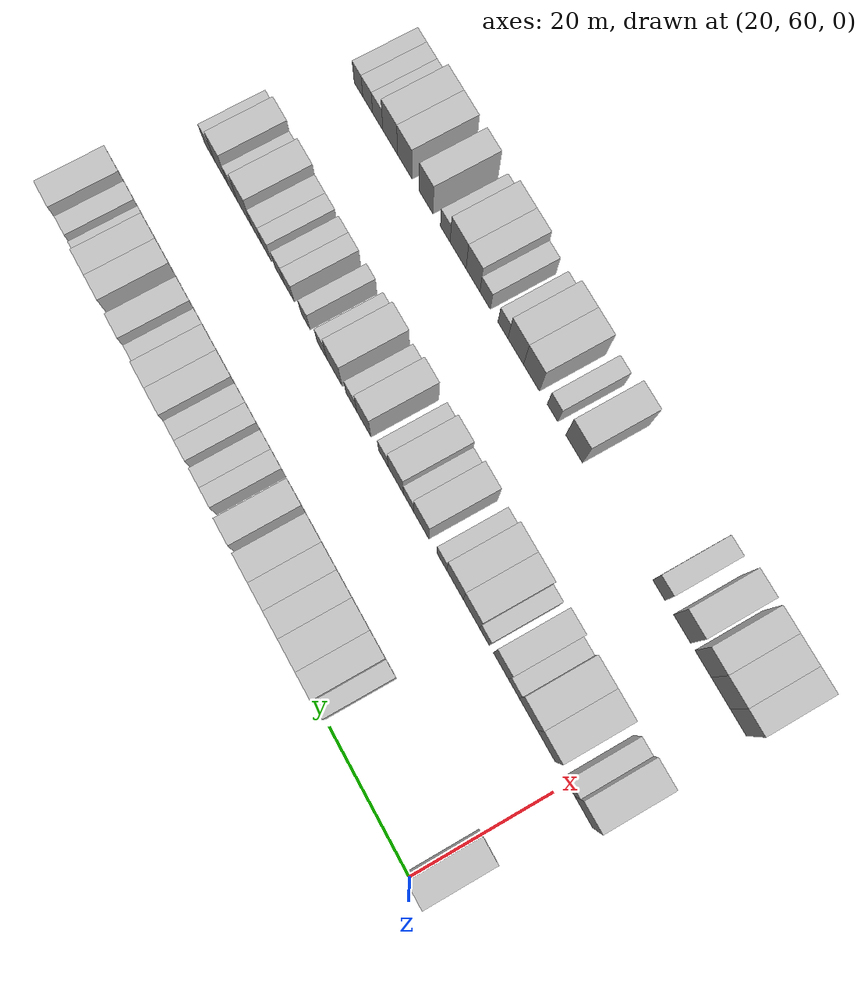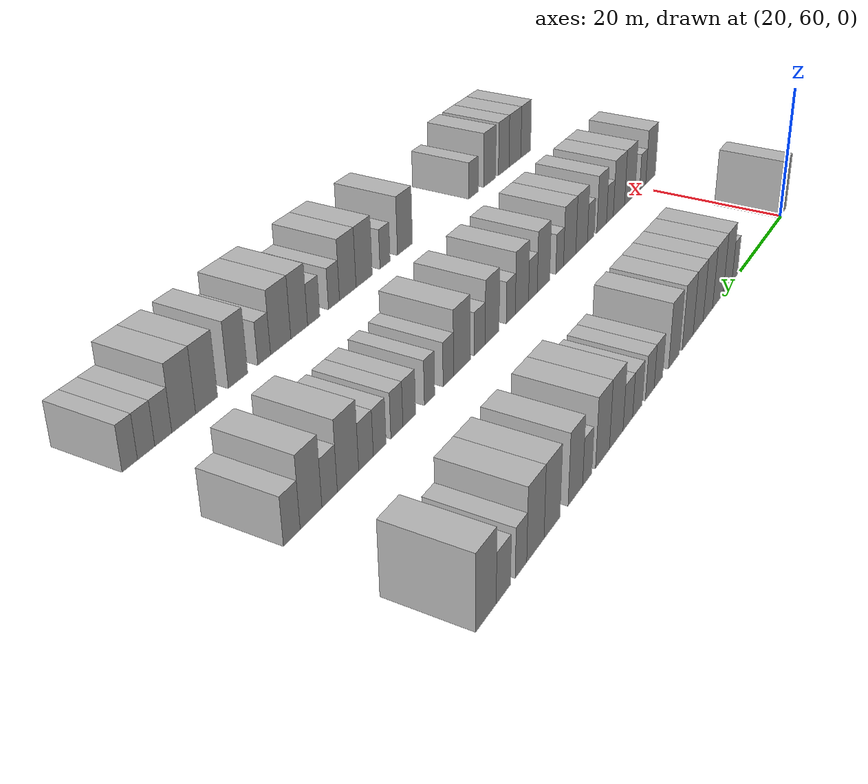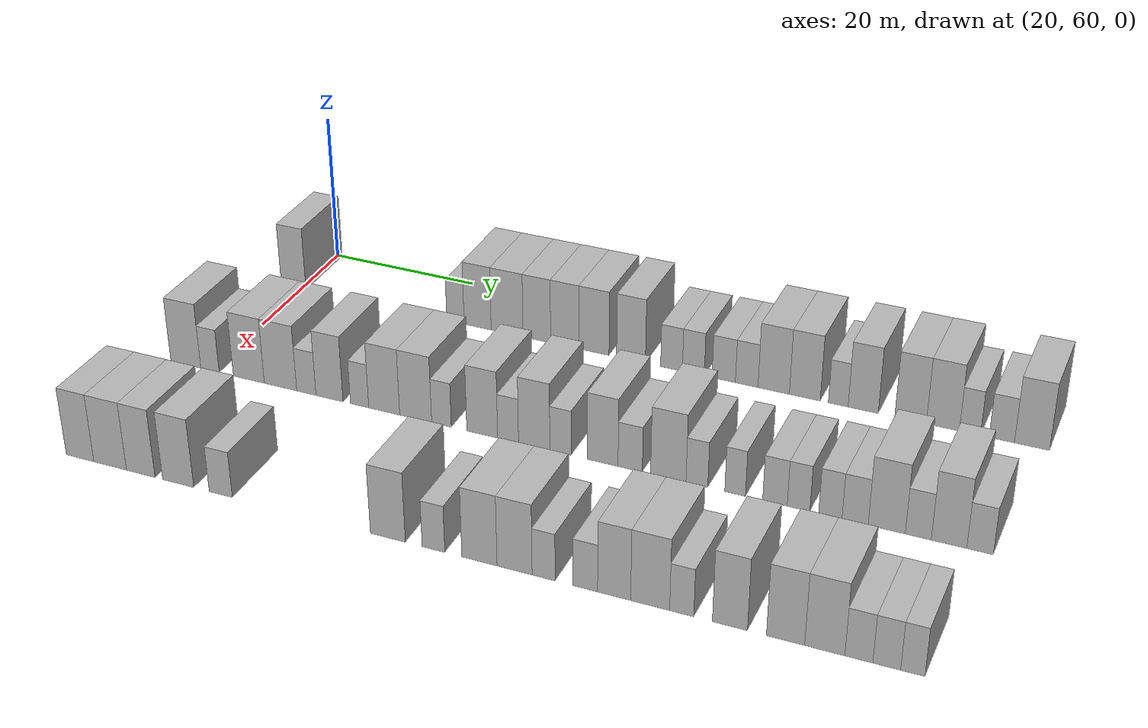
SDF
<sdf version="1.6">
 <world name="default">
  <model name="building_71">
   <static>1</static>
   <pose>25.0000 58.8334 0 0.000000 0.000000 0.000000</pose>
   <link name="link">
    <pose>0 0 4.50 0 0 0</pose>
    <collision name="collision"><geometry><box><size>10.0000 3.6714 9.0000</size></box></geometry></collision>
    <visual name="visual">
     <cast_shadows>0</cast_shadows>
     <geometry><box><size>10.0000 3.6714 9.0000</size></box></geometry>
     <material>
      <script>
       <uri>model://HANNAS_wall/materials/scripts</uri>
       <uri>model://HANNAS_wall/materials/textures</uri>
       <name>vrc/HANNAS_wall</name>
      </script>
     </material>
    </visual>
   </link>
  </model>
  <model name="building_72">
   <static>1</static>
   <pose>25.0000 82.3290 0 0.000000 0.000000 0.000000</pose>
   <link name="link">
    <pose>0 0 3.00 0 0 0</pose>
    <collision name="collision"><geometry><box><size>10.0000 2.4400 6.0000</size></box></geometry></collision>
    <visual name="visual">
     <cast_shadows>0</cast_shadows>
     <geometry><box><size>10.0000 2.4400 6.0000</size></box></geometry>
     <material>
      <script>
       <uri>model://HANNAS_wall/materials/scripts</uri>
       <uri>model://HANNAS_wall/materials/textures</uri>
       <name>vrc/HANNAS_wall</name>
      </script>
     </material>
    </visual>
   </link>
  </model>
  <model name="building_73">
   <static>1</static>
   <pose>25.0000 85.4345 0 0.000000 0.000000 0.000000</pose>
   <link name="link">
    <pose>0 0 4.50 0 0 0</pose>
    <collision name="collision"><geometry><box><size>10.0000 3.7710 9.0000</size></box></geometry></collision>
    <visual name="visual">
     <cast_shadows>0</cast_shadows>
     <geometry><box><size>10.0000 3.7710 9.0000</size></box></geometry>
     <material>
      <script>
       <uri>model://HANNAS_wall/materials/scripts</uri>
       <uri>model://HANNAS_wall/materials/textures</uri>
       <name>vrc/HANNAS_wall</name>
      </script>
     </material>
    </visual>
   </link>
  </model>
  <model name="building_74">
   <static>1</static>
   <pose>25.0000 89.5214 0 0.000000 0.000000 0.000000</pose>
   <link name="link">
    <pose>0 0 4.50 0 0 0</pose>
    <collision name="collision"><geometry><box><size>10.0000 4.4029 9.0000</size></box></geometry></collision>
    <visual name="visual">
     <cast_shadows>0</cast_shadows>
     <geometry><box><size>10.0000 4.4029 9.0000</size></box></geometry>
     <material>
      <script>
       <uri>model://HANNAS_wall/materials/scripts</uri>
       <uri>model://HANNAS_wall/materials/textures</uri>
       <name>vrc/HANNAS_wall</name>
      </script>
     </material>
    </visual>
   </link>
  </model>
  <model name="building_75">
   <static>1</static>
   <pose>25.0000 93.6102 0 0.000000 0.000000 0.000000</pose>
   <link name="link">
    <pose>0 0 4.50 0 0 0</pose>
    <collision name="collision"><geometry><box><size>10.0000 3.7746 9.0000</size></box></geometry></collision>
    <visual name="visual">
     <cast_shadows>0</cast_shadows>
     <geometry><box><size>10.0000 3.7746 9.0000</size></box></geometry>
     <material>
      <script>
       <uri>model://HANNAS_wall/materials/scripts</uri>
       <uri>model://HANNAS_wall/materials/textures</uri>
       <name>vrc/HANNAS_wall</name>
      </script>
     </material>
    </visual>
   </link>
  </model>
  <model name="building_76">
   <static>1</static>
   <pose>25.0000 97.4006 0 0.000000 0.000000 0.000000</pose>
   <link name="link">
    <pose>0 0 4.50 0 0 0</pose>
    <collision name="collision"><geometry><box><size>10.0000 3.8063 9.0000</size></box></geometry></collision>
    <visual name="visual">
     <cast_shadows>0</cast_shadows>
     <geometry><box><size>10.0000 3.8063 9.0000</size></box></geometry>
     <material>
      <script>
       <uri>model://HANNAS_wall/materials/scripts</uri>
       <uri>model://HANNAS_wall/materials/textures</uri>
       <name>vrc/HANNAS_wall</name>
      </script>
     </material>
    </visual>
   </link>
  </model>
  <model name="building_77">
   <static>1</static>
   <pose>25.0000 101.3333 0 0.000000 0.000000 0.000000</pose>
   <link name="link">
    <pose>0 0 4.50 0 0 0</pose>
    <collision name="collision"><geometry><box><size>10.0000 4.0591 9.0000</size></box></geometry></collision>
    <visual name="visual">
     <cast_shadows>0</cast_shadows>
     <geometry><box><size>10.0000 4.0591 9.0000</size></box></geometry>
     <material>
      <script>
       <uri>model://HANNAS_wall/materials/scripts</uri>
       <uri>model://HANNAS_wall/materials/textures</uri>
       <name>vrc/HANNAS_wall</name>
      </script>
     </material>
    </visual>
   </link>
  </model>
  <model name="building_78">
   <static>1</static>
   <pose>25.0000 106.2716 0 0.000000 0.000000 0.000000</pose>
   <link name="link">
    <pose>0 0 4.50 0 0 0</pose>
    <collision name="collision"><geometry><box><size>10.0000 3.8176 9.0000</size></box></geometry></collision>
    <visual name="visual">
     <cast_shadows>0</cast_shadows>
     <geometry><box><size>10.0000 3.8176 9.0000</size></box></geometry>
     <material>
      <script>
       <uri>model://HANNAS_wall/materials/scripts</uri>
       <uri>model://HANNAS_wall/materials/textures</uri>
       <name>vrc/HANNAS_wall</name>
      </script>
     </material>
    </visual>
   </link>
  </model>
  <model name="building_79">
   <static>1</static>
   <pose>25.0000 111.5950 0 0.000000 0.000000 0.000000</pose>
   <link name="link">
    <pose>0 0 3.00 0 0 0</pose>
    <collision name="collision"><geometry><box><size>10.0000 2.8292 6.0000</size></box></geometry></collision>
    <visual name="visual">
     <cast_shadows>0</cast_shadows>
     <geometry><box><size>10.0000 2.8292 6.0000</size></box></geometry>
     <material>
      <script>
       <uri>model://HANNAS_wall/materials/scripts</uri>
       <uri>model://HANNAS_wall/materials/textures</uri>
       <name>vrc/HANNAS_wall</name>
      </script>
     </material>
    </visual>
   </link>
  </model>
  <model name="building_80">
   <static>1</static>
   <pose>25.0000 114.4292 0 0.000000 0.000000 0.000000</pose>
   <link name="link">
    <pose>0 0 3.00 0 0 0</pose>
    <collision name="collision"><geometry><box><size>10.0000 2.8391 6.0000</size></box></geometry></collision>
    <visual name="visual">
     <cast_shadows>0</cast_shadows>
     <geometry><box><size>10.0000 2.8391 6.0000</size></box></geometry>
     <material>
      <script>
       <uri>model://HANNAS_wall/materials/scripts</uri>
       <uri>model://HANNAS_wall/materials/textures</uri>
       <name>vrc/HANNAS_wall</name>
      </script>
     </material>
    </visual>
   </link>
  </model>
  <model name="building_81">
   <static>1</static>
   <pose>25.0000 118.3393 0 0.000000 0.000000 0.000000</pose>
   <link name="link">
    <pose>0 0 3.00 0 0 0</pose>
    <collision name="collision"><geometry><box><size>10.0000 2.9811 6.0000</size></box></geometry></collision>
    <visual name="visual">
     <cast_shadows>0</cast_shadows>
     <geometry><box><size>10.0000 2.9811 6.0000</size></box></geometry>
     <material>
      <script>
       <uri>model://HANNAS_wall/materials/scripts</uri>
       <uri>model://HANNAS_wall/materials/textures</uri>
       <name>vrc/HANNAS_wall</name>
      </script>
     </material>
    </visual>
   </link>
  </model>
  <model name="building_82">
   <static>1</static>
   <pose>25.0000 121.2665 0 0.000000 0.000000 0.000000</pose>
   <link name="link">
    <pose>0 0 3.00 0 0 0</pose>
    <collision name="collision"><geometry><box><size>10.0000 2.8732 6.0000</size></box></geometry></collision>
    <visual name="visual">
     <cast_shadows>0</cast_shadows>
     <geometry><box><size>10.0000 2.8732 6.0000</size></box></geometry>
     <material>
      <script>
       <uri>model://HANNAS_wall/materials/scripts</uri>
       <uri>model://HANNAS_wall/materials/textures</uri>
       <name>vrc/HANNAS_wall</name>
      </script>
     </material>
    </visual>
   </link>
  </model>
  <model name="building_83">
   <static>1</static>
   <pose>25.0000 124.6743 0 0.000000 0.000000 0.000000</pose>
   <link name="link">
    <pose>0 0 4.50 0 0 0</pose>
    <collision name="collision"><geometry><box><size>10.0000 3.9424 9.0000</size></box></geometry></collision>
    <visual name="visual">
     <cast_shadows>0</cast_shadows>
     <geometry><box><size>10.0000 3.9424 9.0000</size></box></geometry>
     <material>
      <script>
       <uri>model://HANNAS_wall/materials/scripts</uri>
       <uri>model://HANNAS_wall/materials/textures</uri>
       <name>vrc/HANNAS_wall</name>
      </script>
     </material>
    </visual>
   </link>
  </model>
  <model name="building_84">
   <static>1</static>
   <pose>25.0000 128.5680 0 0.000000 0.000000 0.000000</pose>
   <link name="link">
    <pose>0 0 4.50 0 0 0</pose>
    <collision name="collision"><geometry><box><size>10.0000 3.8451 9.0000</size></box></geometry></collision>
    <visual name="visual">
     <cast_shadows>0</cast_shadows>
     <geometry><box><size>10.0000 3.8451 9.0000</size></box></geometry>
     <material>
      <script>
       <uri>model://HANNAS_wall/materials/scripts</uri>
       <uri>model://HANNAS_wall/materials/textures</uri>
       <name>vrc/HANNAS_wall</name>
      </script>
     </material>
    </visual>
   </link>
  </model>
  <model name="building_85">
   <static>1</static>
   <pose>25.0000 132.7024 0 0.000000 0.000000 0.000000</pose>
   <link name="link">
    <pose>0 0 3.00 0 0 0</pose>
    <collision name="collision"><geometry><box><size>10.0000 2.4239 6.0000</size></box></geometry></collision>
    <visual name="visual">
     <cast_shadows>0</cast_shadows>
     <geometry><box><size>10.0000 2.4239 6.0000</size></box></geometry>
     <material>
      <script>
       <uri>model://HANNAS_wall/materials/scripts</uri>
       <uri>model://HANNAS_wall/materials/textures</uri>
       <name>vrc/HANNAS_wall</name>
      </script>
     </material>
    </visual>
   </link>
  </model>
  <model name="building_86">
   <static>1</static>
   <pose>25.0000 135.7550 0 0.000000 0.000000 0.000000</pose>
   <link name="link">
    <pose>0 0 4.50 0 0 0</pose>
    <collision name="collision"><geometry><box><size>10.0000 3.6813 9.0000</size></box></geometry></collision>
    <visual name="visual">
     <cast_shadows>0</cast_shadows>
     <geometry><box><size>10.0000 3.6813 9.0000</size></box></geometry>
     <material>
      <script>
       <uri>model://HANNAS_wall/materials/scripts</uri>
       <uri>model://HANNAS_wall/materials/textures</uri>
       <name>vrc/HANNAS_wall</name>
      </script>
     </material>
    </visual>
   </link>
  </model>
  <model name="building_87">
   <static>1</static>
   <pose>25.0000 141.4812 0 0.000000 0.000000 0.000000</pose>
   <link name="link">
    <pose>0 0 4.50 0 0 0</pose>
    <collision name="collision"><geometry><box><size>10.0000 3.7710 9.0000</size></box></geometry></collision>
    <visual name="visual">
     <cast_shadows>0</cast_shadows>
     <geometry><box><size>10.0000 3.7710 9.0000</size></box></geometry>
     <material>
      <script>
       <uri>model://HANNAS_wall/materials/scripts</uri>
       <uri>model://HANNAS_wall/materials/textures</uri>
       <name>vrc/HANNAS_wall</name>
      </script>
     </material>
    </visual>
   </link>
  </model>
  <model name="building_88">
   <static>1</static>
   <pose>25.0000 145.3287 0 0.000000 0.000000 0.000000</pose>
   <link name="link">
    <pose>0 0 4.50 0 0 0</pose>
    <collision name="collision"><geometry><box><size>10.0000 3.9241 9.0000</size></box></geometry></collision>
    <visual name="visual">
     <cast_shadows>0</cast_shadows>
     <geometry><box><size>10.0000 3.9241 9.0000</size></box></geometry>
     <material>
      <script>
       <uri>model://HANNAS_wall/materials/scripts</uri>
       <uri>model://HANNAS_wall/materials/textures</uri>
       <name>vrc/HANNAS_wall</name>
      </script>
     </material>
    </visual>
   </link>
  </model>
  <model name="building_89">
   <static>1</static>
   <pose>25.0000 148.5356 0 0.000000 0.000000 0.000000</pose>
   <link name="link">
    <pose>0 0 3.00 0 0 0</pose>
    <collision name="collision"><geometry><box><size>10.0000 2.4896 6.0000</size></box></geometry></collision>
    <visual name="visual">
     <cast_shadows>0</cast_shadows>
     <geometry><box><size>10.0000 2.4896 6.0000</size></box></geometry>
     <material>
      <script>
       <uri>model://HANNAS_wall/materials/scripts</uri>
       <uri>model://HANNAS_wall/materials/textures</uri>
       <name>vrc/HANNAS_wall</name>
      </script>
     </material>
    </visual>
   </link>
  </model>
  <model name="building_90">
   <static>1</static>
   <pose>25.0000 152.2532 0 0.000000 0.000000 0.000000</pose>
   <link name="link">
    <pose>0 0 3.00 0 0 0</pose>
    <collision name="collision"><geometry><box><size>10.0000 2.9456 6.0000</size></box></geometry></collision>
    <visual name="visual">
     <cast_shadows>0</cast_shadows>
     <geometry><box><size>10.0000 2.9456 6.0000</size></box></geometry>
     <material>
      <script>
       <uri>model://HANNAS_wall/materials/scripts</uri>
       <uri>model://HANNAS_wall/materials/textures</uri>
       <name>vrc/HANNAS_wall</name>
      </script>
     </material>
    </visual>
   </link>
  </model>
  <model name="building_91">
   <static>1</static>
   <pose>25.0000 155.7516 0 0.000000 0.000000 0.000000</pose>
   <link name="link">
    <pose>0 0 4.50 0 0 0</pose>
    <collision name="collision"><geometry><box><size>10.0000 4.0513 9.0000</size></box></geometry></collision>
    <visual name="visual">
     <cast_shadows>0</cast_shadows>
     <geometry><box><size>10.0000 4.0513 9.0000</size></box></geometry>
     <material>
      <script>
       <uri>model://HANNAS_wall/materials/scripts</uri>
       <uri>model://HANNAS_wall/materials/textures</uri>
       <name>vrc/HANNAS_wall</name>
      </script>
     </material>
    </visual>
   </link>
  </model>
  <model name="building_179">
   <static>1</static>
   <pose>47.0000 56.1920 0 0.000000 0.000000 0.000000</pose>
   <link name="link">
    <pose>0 0 4.50 0 0 0</pose>
    <collision name="collision"><geometry><box><size>10.0000 4.2655 9.0000</size></box></geometry></collision>
    <visual name="visual">
     <cast_shadows>0</cast_shadows>
     <geometry><box><size>10.0000 4.2655 9.0000</size></box></geometry>
     <material>
      <script>
       <uri>model://HANNAS_wall/materials/scripts</uri>
       <uri>model://HANNAS_wall/materials/textures</uri>
       <name>vrc/HANNAS_wall</name>
      </script>
     </material>
    </visual>
   </link>
  </model>
  <model name="building_180">
   <static>1</static>
   <pose>47.0000 59.6289 0 0.000000 0.000000 0.000000</pose>
   <link name="link">
    <pose>0 0 3.00 0 0 0</pose>
    <collision name="collision"><geometry><box><size>10.0000 2.6082 6.0000</size></box></geometry></collision>
    <visual name="visual">
     <cast_shadows>0</cast_shadows>
     <geometry><box><size>10.0000 2.6082 6.0000</size></box></geometry>
     <material>
      <script>
       <uri>model://HANNAS_wall/materials/scripts</uri>
       <uri>model://HANNAS_wall/materials/textures</uri>
       <name>vrc/HANNAS_wall</name>
      </script>
     </material>
    </visual>
   </link>
  </model>
  <model name="building_181">
   <static>1</static>
   <pose>47.0000 65.0912 0 0.000000 0.000000 0.000000</pose>
   <link name="link">
    <pose>0 0 4.50 0 0 0</pose>
    <collision name="collision"><geometry><box><size>10.0000 4.3164 9.0000</size></box></geometry></collision>
    <visual name="visual">
     <cast_shadows>0</cast_shadows>
     <geometry><box><size>10.0000 4.3164 9.0000</size></box></geometry>
     <material>
      <script>
       <uri>model://HANNAS_wall/materials/scripts</uri>
       <uri>model://HANNAS_wall/materials/textures</uri>
       <name>vrc/HANNAS_wall</name>
      </script>
     </material>
    </visual>
   </link>
  </model>
  <model name="building_182">
   <static>1</static>
   <pose>47.0000 69.4834 0 0.000000 0.000000 0.000000</pose>
   <link name="link">
    <pose>0 0 4.50 0 0 0</pose>
    <collision name="collision"><geometry><box><size>10.0000 4.4679 9.0000</size></box></geometry></collision>
    <visual name="visual">
     <cast_shadows>0</cast_shadows>
     <geometry><box><size>10.0000 4.4679 9.0000</size></box></geometry>
     <material>
      <script>
       <uri>model://HANNAS_wall/materials/scripts</uri>
       <uri>model://HANNAS_wall/materials/textures</uri>
       <name>vrc/HANNAS_wall</name>
      </script>
     </material>
    </visual>
   </link>
  </model>
  <model name="building_183">
   <static>1</static>
   <pose>47.0000 73.0306 0 0.000000 0.000000 0.000000</pose>
   <link name="link">
    <pose>0 0 3.00 0 0 0</pose>
    <collision name="collision"><geometry><box><size>10.0000 2.6266 6.0000</size></box></geometry></collision>
    <visual name="visual">
     <cast_shadows>0</cast_shadows>
     <geometry><box><size>10.0000 2.6266 6.0000</size></box></geometry>
     <material>
      <script>
       <uri>model://HANNAS_wall/materials/scripts</uri>
       <uri>model://HANNAS_wall/materials/textures</uri>
       <name>vrc/HANNAS_wall</name>
      </script>
     </material>
    </visual>
   </link>
  </model>
  <model name="building_184">
   <static>1</static>
   <pose>47.0000 76.1785 0 0.000000 0.000000 0.000000</pose>
   <link name="link">
    <pose>0 0 4.50 0 0 0</pose>
    <collision name="collision"><geometry><box><size>10.0000 3.6692 9.0000</size></box></geometry></collision>
    <visual name="visual">
     <cast_shadows>0</cast_shadows>
     <geometry><box><size>10.0000 3.6692 9.0000</size></box></geometry>
     <material>
      <script>
       <uri>model://HANNAS_wall/materials/scripts</uri>
       <uri>model://HANNAS_wall/materials/textures</uri>
       <name>vrc/HANNAS_wall</name>
      </script>
     </material>
    </visual>
   </link>
  </model>
  <model name="building_185">
   <static>1</static>
   <pose>47.0000 80.2340 0 0.000000 0.000000 0.000000</pose>
   <link name="link">
    <pose>0 0 3.00 0 0 0</pose>
    <collision name="collision"><geometry><box><size>10.0000 2.4418 6.0000</size></box></geometry></collision>
    <visual name="visual">
     <cast_shadows>0</cast_shadows>
     <geometry><box><size>10.0000 2.4418 6.0000</size></box></geometry>
     <material>
      <script>
       <uri>model://HANNAS_wall/materials/scripts</uri>
       <uri>model://HANNAS_wall/materials/textures</uri>
       <name>vrc/HANNAS_wall</name>
      </script>
     </material>
    </visual>
   </link>
  </model>
  <model name="building_186">
   <static>1</static>
   <pose>47.0000 83.5110 0 0.000000 0.000000 0.000000</pose>
   <link name="link">
    <pose>0 0 4.50 0 0 0</pose>
    <collision name="collision"><geometry><box><size>10.0000 4.1122 9.0000</size></box></geometry></collision>
    <visual name="visual">
     <cast_shadows>0</cast_shadows>
     <geometry><box><size>10.0000 4.1122 9.0000</size></box></geometry>
     <material>
      <script>
       <uri>model://HANNAS_wall/materials/scripts</uri>
       <uri>model://HANNAS_wall/materials/textures</uri>
       <name>vrc/HANNAS_wall</name>
      </script>
     </material>
    </visual>
   </link>
  </model>
  <model name="building_187">
   <static>1</static>
   <pose>47.0000 87.6630 0 0.000000 0.000000 0.000000</pose>
   <link name="link">
    <pose>0 0 4.50 0 0 0</pose>
    <collision name="collision"><geometry><box><size>10.0000 4.1918 9.0000</size></box></geometry></collision>
    <visual name="visual">
     <cast_shadows>0</cast_shadows>
     <geometry><box><size>10.0000 4.1918 9.0000</size></box></geometry>
     <material>
      <script>
       <uri>model://HANNAS_wall/materials/scripts</uri>
       <uri>model://HANNAS_wall/materials/textures</uri>
       <name>vrc/HANNAS_wall</name>
      </script>
     </material>
    </visual>
   </link>
  </model>
  <model name="building_188">
   <static>1</static>
   <pose>47.0000 91.0342 0 0.000000 0.000000 0.000000</pose>
   <link name="link">
    <pose>0 0 3.00 0 0 0</pose>
    <collision name="collision"><geometry><box><size>10.0000 2.5507 6.0000</size></box></geometry></collision>
    <visual name="visual">
     <cast_shadows>0</cast_shadows>
     <geometry><box><size>10.0000 2.5507 6.0000</size></box></geometry>
     <material>
      <script>
       <uri>model://HANNAS_wall/materials/scripts</uri>
       <uri>model://HANNAS_wall/materials/textures</uri>
       <name>vrc/HANNAS_wall</name>
      </script>
     </material>
    </visual>
   </link>
  </model>
  <model name="building_189">
   <static>1</static>
   <pose>47.0000 96.2801 0 0.000000 0.000000 0.000000</pose>
   <link name="link">
    <pose>0 0 4.50 0 0 0</pose>
    <collision name="collision"><geometry><box><size>10.0000 3.9411 9.0000</size></box></geometry></collision>
    <visual name="visual">
     <cast_shadows>0</cast_shadows>
     <geometry><box><size>10.0000 3.9411 9.0000</size></box></geometry>
     <material>
      <script>
       <uri>model://HANNAS_wall/materials/scripts</uri>
       <uri>model://HANNAS_wall/materials/textures</uri>
       <name>vrc/HANNAS_wall</name>
      </script>
     </material>
    </visual>
   </link>
  </model>
  <model name="building_190">
   <static>1</static>
   <pose>47.0000 99.5739 0 0.000000 0.000000 0.000000</pose>
   <link name="link">
    <pose>0 0 3.00 0 0 0</pose>
    <collision name="collision"><geometry><box><size>10.0000 2.6464 6.0000</size></box></geometry></collision>
    <visual name="visual">
     <cast_shadows>0</cast_shadows>
     <geometry><box><size>10.0000 2.6464 6.0000</size></box></geometry>
     <material>
      <script>
       <uri>model://HANNAS_wall/materials/scripts</uri>
       <uri>model://HANNAS_wall/materials/textures</uri>
       <name>vrc/HANNAS_wall</name>
      </script>
     </material>
    </visual>
   </link>
  </model>
  <model name="building_191">
   <static>1</static>
   <pose>47.0000 102.8625 0 0.000000 0.000000 0.000000</pose>
   <link name="link">
    <pose>0 0 4.50 0 0 0</pose>
    <collision name="collision"><geometry><box><size>10.0000 3.9309 9.0000</size></box></geometry></collision>
    <visual name="visual">
     <cast_shadows>0</cast_shadows>
     <geometry><box><size>10.0000 3.9309 9.0000</size></box></geometry>
     <material>
      <script>
       <uri>model://HANNAS_wall/materials/scripts</uri>
       <uri>model://HANNAS_wall/materials/textures</uri>
       <name>vrc/HANNAS_wall</name>
      </script>
     </material>
    </visual>
   </link>
  </model>
  <model name="building_192">
   <static>1</static>
   <pose>47.0000 106.1463 0 0.000000 0.000000 0.000000</pose>
   <link name="link">
    <pose>0 0 3.00 0 0 0</pose>
    <collision name="collision"><geometry><box><size>10.0000 2.6366 6.0000</size></box></geometry></collision>
    <visual name="visual">
     <cast_shadows>0</cast_shadows>
     <geometry><box><size>10.0000 2.6366 6.0000</size></box></geometry>
     <material>
      <script>
       <uri>model://HANNAS_wall/materials/scripts</uri>
       <uri>model://HANNAS_wall/materials/textures</uri>
       <name>vrc/HANNAS_wall</name>
      </script>
     </material>
    </visual>
   </link>
  </model>
  <model name="building_193">
   <static>1</static>
   <pose>47.0000 111.3453 0 0.000000 0.000000 0.000000</pose>
   <link name="link">
    <pose>0 0 4.50 0 0 0</pose>
    <collision name="collision"><geometry><box><size>10.0000 3.7614 9.0000</size></box></geometry></collision>
    <visual name="visual">
     <cast_shadows>0</cast_shadows>
     <geometry><box><size>10.0000 3.7614 9.0000</size></box></geometry>
     <material>
      <script>
       <uri>model://HANNAS_wall/materials/scripts</uri>
       <uri>model://HANNAS_wall/materials/textures</uri>
       <name>vrc/HANNAS_wall</name>
      </script>
     </material>
    </visual>
   </link>
  </model>
  <model name="building_194">
   <static>1</static>
   <pose>47.0000 114.7005 0 0.000000 0.000000 0.000000</pose>
   <link name="link">
    <pose>0 0 3.00 0 0 0</pose>
    <collision name="collision"><geometry><box><size>10.0000 2.9491 6.0000</size></box></geometry></collision>
    <visual name="visual">
     <cast_shadows>0</cast_shadows>
     <geometry><box><size>10.0000 2.9491 6.0000</size></box></geometry>
     <material>
      <script>
       <uri>model://HANNAS_wall/materials/scripts</uri>
       <uri>model://HANNAS_wall/materials/textures</uri>
       <name>vrc/HANNAS_wall</name>
      </script>
     </material>
    </visual>
   </link>
  </model>
  <model name="building_195">
   <static>1</static>
   <pose>47.0000 119.2922 0 0.000000 0.000000 0.000000</pose>
   <link name="link">
    <pose>0 0 4.50 0 0 0</pose>
    <collision name="collision"><geometry><box><size>10.0000 4.2342 9.0000</size></box></geometry></collision>
    <visual name="visual">
     <cast_shadows>0</cast_shadows>
     <geometry><box><size>10.0000 4.2342 9.0000</size></box></geometry>
     <material>
      <script>
       <uri>model://HANNAS_wall/materials/scripts</uri>
       <uri>model://HANNAS_wall/materials/textures</uri>
       <name>vrc/HANNAS_wall</name>
      </script>
     </material>
    </visual>
   </link>
  </model>
  <model name="building_196">
   <static>1</static>
   <pose>47.0000 122.7007 0 0.000000 0.000000 0.000000</pose>
   <link name="link">
    <pose>0 0 3.00 0 0 0</pose>
    <collision name="collision"><geometry><box><size>10.0000 2.5828 6.0000</size></box></geometry></collision>
    <visual name="visual">
     <cast_shadows>0</cast_shadows>
     <geometry><box><size>10.0000 2.5828 6.0000</size></box></geometry>
     <material>
      <script>
       <uri>model://HANNAS_wall/materials/scripts</uri>
       <uri>model://HANNAS_wall/materials/textures</uri>
       <name>vrc/HANNAS_wall</name>
      </script>
     </material>
    </visual>
   </link>
  </model>
  <model name="building_197">
   <static>1</static>
   <pose>47.0000 127.2000 0 0.000000 0.000000 0.000000</pose>
   <link name="link">
    <pose>0 0 3.00 0 0 0</pose>
    <collision name="collision"><geometry><box><size>10.0000 2.4159 6.0000</size></box></geometry></collision>
    <visual name="visual">
     <cast_shadows>0</cast_shadows>
     <geometry><box><size>10.0000 2.4159 6.0000</size></box></geometry>
     <material>
      <script>
       <uri>model://HANNAS_wall/materials/scripts</uri>
       <uri>model://HANNAS_wall/materials/textures</uri>
       <name>vrc/HANNAS_wall</name>
      </script>
     </material>
    </visual>
   </link>
  </model>
  <model name="building_198">
   <static>1</static>
   <pose>47.0000 131.8202 0 0.000000 0.000000 0.000000</pose>
   <link name="link">
    <pose>0 0 3.00 0 0 0</pose>
    <collision name="collision"><geometry><box><size>10.0000 2.8245 6.0000</size></box></geometry></collision>
    <visual name="visual">
     <cast_shadows>0</cast_shadows>
     <geometry><box><size>10.0000 2.8245 6.0000</size></box></geometry>
     <material>
      <script>
       <uri>model://HANNAS_wall/materials/scripts</uri>
       <uri>model://HANNAS_wall/materials/textures</uri>
       <name>vrc/HANNAS_wall</name>
      </script>
     </material>
    </visual>
   </link>
  </model>
  <model name="building_199">
   <static>1</static>
   <pose>47.0000 134.5304 0 0.000000 0.000000 0.000000</pose>
   <link name="link">
    <pose>0 0 3.00 0 0 0</pose>
    <collision name="collision"><geometry><box><size>10.0000 2.5958 6.0000</size></box></geometry></collision>
    <visual name="visual">
     <cast_shadows>0</cast_shadows>
     <geometry><box><size>10.0000 2.5958 6.0000</size></box></geometry>
     <material>
      <script>
       <uri>model://HANNAS_wall/materials/scripts</uri>
       <uri>model://HANNAS_wall/materials/textures</uri>
       <name>vrc/HANNAS_wall</name>
      </script>
     </material>
    </visual>
   </link>
  </model>
  <model name="building_200">
   <static>1</static>
   <pose>47.0000 138.1471 0 0.000000 0.000000 0.000000</pose>
   <link name="link">
    <pose>0 0 3.00 0 0 0</pose>
    <collision name="collision"><geometry><box><size>10.0000 2.6376 6.0000</size></box></geometry></collision>
    <visual name="visual">
     <cast_shadows>0</cast_shadows>
     <geometry><box><size>10.0000 2.6376 6.0000</size></box></geometry>
     <material>
      <script>
       <uri>model://HANNAS_wall/materials/scripts</uri>
       <uri>model://HANNAS_wall/materials/textures</uri>
       <name>vrc/HANNAS_wall</name>
      </script>
     </material>
    </visual>
   </link>
  </model>
  <model name="building_201">
   <static>1</static>
   <pose>47.0000 140.9285 0 0.000000 0.000000 0.000000</pose>
   <link name="link">
    <pose>0 0 3.00 0 0 0</pose>
    <collision name="collision"><geometry><box><size>10.0000 2.9251 6.0000</size></box></geometry></collision>
    <visual name="visual">
     <cast_shadows>0</cast_shadows>
     <geometry><box><size>10.0000 2.9251 6.0000</size></box></geometry>
     <material>
      <script>
       <uri>model://HANNAS_wall/materials/scripts</uri>
       <uri>model://HANNAS_wall/materials/textures</uri>
       <name>vrc/HANNAS_wall</name>
      </script>
     </material>
    </visual>
   </link>
  </model>
  <model name="building_202">
   <static>1</static>
   <pose>47.0000 144.4499 0 0.000000 0.000000 0.000000</pose>
   <link name="link">
    <pose>0 0 4.50 0 0 0</pose>
    <collision name="collision"><geometry><box><size>10.0000 4.1177 9.0000</size></box></geometry></collision>
    <visual name="visual">
     <cast_shadows>0</cast_shadows>
     <geometry><box><size>10.0000 4.1177 9.0000</size></box></geometry>
     <material>
      <script>
       <uri>model://HANNAS_wall/materials/scripts</uri>
       <uri>model://HANNAS_wall/materials/textures</uri>
       <name>vrc/HANNAS_wall</name>
      </script>
     </material>
    </visual>
   </link>
  </model>
  <model name="building_203">
   <static>1</static>
   <pose>47.0000 147.9357 0 0.000000 0.000000 0.000000</pose>
   <link name="link">
    <pose>0 0 3.00 0 0 0</pose>
    <collision name="collision"><geometry><box><size>10.0000 2.8539 6.0000</size></box></geometry></collision>
    <visual name="visual">
     <cast_shadows>0</cast_shadows>
     <geometry><box><size>10.0000 2.8539 6.0000</size></box></geometry>
     <material>
      <script>
       <uri>model://HANNAS_wall/materials/scripts</uri>
       <uri>model://HANNAS_wall/materials/textures</uri>
       <name>vrc/HANNAS_wall</name>
      </script>
     </material>
    </visual>
   </link>
  </model>
  <model name="building_204">
   <static>1</static>
   <pose>47.0000 151.2907 0 0.000000 0.000000 0.000000</pose>
   <link name="link">
    <pose>0 0 4.50 0 0 0</pose>
    <collision name="collision"><geometry><box><size>10.0000 3.8561 9.0000</size></box></geometry></collision>
    <visual name="visual">
     <cast_shadows>0</cast_shadows>
     <geometry><box><size>10.0000 3.8561 9.0000</size></box></geometry>
     <material>
      <script>
       <uri>model://HANNAS_wall/materials/scripts</uri>
       <uri>model://HANNAS_wall/materials/textures</uri>
       <name>vrc/HANNAS_wall</name>
      </script>
     </material>
    </visual>
   </link>
  </model>
  <model name="building_205">
   <static>1</static>
   <pose>47.0000 154.6485 0 0.000000 0.000000 0.000000</pose>
   <link name="link">
    <pose>0 0 3.00 0 0 0</pose>
    <collision name="collision"><geometry><box><size>10.0000 2.8597 6.0000</size></box></geometry></collision>
    <visual name="visual">
     <cast_shadows>0</cast_shadows>
     <geometry><box><size>10.0000 2.8597 6.0000</size></box></geometry>
     <material>
      <script>
       <uri>model://HANNAS_wall/materials/scripts</uri>
       <uri>model://HANNAS_wall/materials/textures</uri>
       <name>vrc/HANNAS_wall</name>
      </script>
     </material>
    </visual>
   </link>
  </model>
  <model name="building_296">
   <static>1</static>
   <pose>69.0000 55.9680 0 0.000000 0.000000 0.000000</pose>
   <link name="link">
    <pose>0 0 4.50 0 0 0</pose>
    <collision name="collision"><geometry><box><size>10.0000 3.7202 9.0000</size></box></geometry></collision>
    <visual name="visual">
     <cast_shadows>0</cast_shadows>
     <geometry><box><size>10.0000 3.7202 9.0000</size></box></geometry>
     <material>
      <script>
       <uri>model://HANNAS_wall/materials/scripts</uri>
       <uri>model://HANNAS_wall/materials/textures</uri>
       <name>vrc/HANNAS_wall</name>
      </script>
     </material>
    </visual>
   </link>
  </model>
  <model name="building_297">
   <static>1</static>
   <pose>69.0000 60.0129 0 0.000000 0.000000 0.000000</pose>
   <link name="link">
    <pose>0 0 4.50 0 0 0</pose>
    <collision name="collision"><geometry><box><size>10.0000 4.3695 9.0000</size></box></geometry></collision>
    <visual name="visual">
     <cast_shadows>0</cast_shadows>
     <geometry><box><size>10.0000 4.3695 9.0000</size></box></geometry>
     <material>
      <script>
       <uri>model://HANNAS_wall/materials/scripts</uri>
       <uri>model://HANNAS_wall/materials/textures</uri>
       <name>vrc/HANNAS_wall</name>
      </script>
     </material>
    </visual>
   </link>
  </model>
  <model name="building_298">
   <static>1</static>
   <pose>69.0000 64.0937 0 0.000000 0.000000 0.000000</pose>
   <link name="link">
    <pose>0 0 4.50 0 0 0</pose>
    <collision name="collision"><geometry><box><size>10.0000 3.7922 9.0000</size></box></geometry></collision>
    <visual name="visual">
     <cast_shadows>0</cast_shadows>
     <geometry><box><size>10.0000 3.7922 9.0000</size></box></geometry>
     <material>
      <script>
       <uri>model://HANNAS_wall/materials/scripts</uri>
       <uri>model://HANNAS_wall/materials/textures</uri>
       <name>vrc/HANNAS_wall</name>
      </script>
     </material>
    </visual>
   </link>
  </model>
  <model name="building_299">
   <static>1</static>
   <pose>69.0000 69.0183 0 0.000000 0.000000 0.000000</pose>
   <link name="link">
    <pose>0 0 4.50 0 0 0</pose>
    <collision name="collision"><geometry><box><size>10.0000 4.0569 9.0000</size></box></geometry></collision>
    <visual name="visual">
     <cast_shadows>0</cast_shadows>
     <geometry><box><size>10.0000 4.0569 9.0000</size></box></geometry>
     <material>
      <script>
       <uri>model://HANNAS_wall/materials/scripts</uri>
       <uri>model://HANNAS_wall/materials/textures</uri>
       <name>vrc/HANNAS_wall</name>
      </script>
     </material>
    </visual>
   </link>
  </model>
  <model name="building_300">
   <static>1</static>
   <pose>69.0000 74.5302 0 0.000000 0.000000 0.000000</pose>
   <link name="link">
    <pose>0 0 3.00 0 0 0</pose>
    <collision name="collision"><geometry><box><size>10.0000 2.9670 6.0000</size></box></geometry></collision>
    <visual name="visual">
     <cast_shadows>0</cast_shadows>
     <geometry><box><size>10.0000 2.9670 6.0000</size></box></geometry>
     <material>
      <script>
       <uri>model://HANNAS_wall/materials/scripts</uri>
       <uri>model://HANNAS_wall/materials/textures</uri>
       <name>vrc/HANNAS_wall</name>
      </script>
     </material>
    </visual>
   </link>
  </model>
  <model name="building_301">
   <static>1</static>
   <pose>69.0000 95.3189 0 0.000000 0.000000 0.000000</pose>
   <link name="link">
    <pose>0 0 4.50 0 0 0</pose>
    <collision name="collision"><geometry><box><size>10.0000 4.2035 9.0000</size></box></geometry></collision>
    <visual name="visual">
     <cast_shadows>0</cast_shadows>
     <geometry><box><size>10.0000 4.2035 9.0000</size></box></geometry>
     <material>
      <script>
       <uri>model://HANNAS_wall/materials/scripts</uri>
       <uri>model://HANNAS_wall/materials/textures</uri>
       <name>vrc/HANNAS_wall</name>
      </script>
     </material>
    </visual>
   </link>
  </model>
  <model name="building_302">
   <static>1</static>
   <pose>69.0000 100.7641 0 0.000000 0.000000 0.000000</pose>
   <link name="link">
    <pose>0 0 3.00 0 0 0</pose>
    <collision name="collision"><geometry><box><size>10.0000 2.6868 6.0000</size></box></geometry></collision>
    <visual name="visual">
     <cast_shadows>0</cast_shadows>
     <geometry><box><size>10.0000 2.6868 6.0000</size></box></geometry>
     <material>
      <script>
       <uri>model://HANNAS_wall/materials/scripts</uri>
       <uri>model://HANNAS_wall/materials/textures</uri>
       <name>vrc/HANNAS_wall</name>
      </script>
     </material>
    </visual>
   </link>
  </model>
  <model name="building_303">
   <static>1</static>
   <pose>69.0000 106.1565 0 0.000000 0.000000 0.000000</pose>
   <link name="link">
    <pose>0 0 4.50 0 0 0</pose>
    <collision name="collision"><geometry><box><size>10.0000 4.0980 9.0000</size></box></geometry></collision>
    <visual name="visual">
     <cast_shadows>0</cast_shadows>
     <geometry><box><size>10.0000 4.0980 9.0000</size></box></geometry>
     <material>
      <script>
       <uri>model://HANNAS_wall/materials/scripts</uri>
       <uri>model://HANNAS_wall/materials/textures</uri>
       <name>vrc/HANNAS_wall</name>
      </script>
     </material>
    </visual>
   </link>
  </model>
  <model name="building_304">
   <static>1</static>
   <pose>69.0000 110.2219 0 0.000000 0.000000 0.000000</pose>
   <link name="link">
    <pose>0 0 4.50 0 0 0</pose>
    <collision name="collision"><geometry><box><size>10.0000 4.0328 9.0000</size></box></geometry></collision>
    <visual name="visual">
     <cast_shadows>0</cast_shadows>
     <geometry><box><size>10.0000 4.0328 9.0000</size></box></geometry>
     <material>
      <script>
       <uri>model://HANNAS_wall/materials/scripts</uri>
       <uri>model://HANNAS_wall/materials/textures</uri>
       <name>vrc/HANNAS_wall</name>
      </script>
     </material>
    </visual>
   </link>
  </model>
  <model name="building_305">
   <static>1</static>
   <pose>69.0000 113.5476 0 0.000000 0.000000 0.000000</pose>
   <link name="link">
    <pose>0 0 3.00 0 0 0</pose>
    <collision name="collision"><geometry><box><size>10.0000 2.6186 6.0000</size></box></geometry></collision>
    <visual name="visual">
     <cast_shadows>0</cast_shadows>
     <geometry><box><size>10.0000 2.6186 6.0000</size></box></geometry>
     <material>
      <script>
       <uri>model://HANNAS_wall/materials/scripts</uri>
       <uri>model://HANNAS_wall/materials/textures</uri>
       <name>vrc/HANNAS_wall</name>
      </script>
     </material>
    </visual>
   </link>
  </model>
  <model name="building_306">
   <static>1</static>
   <pose>69.0000 118.2403 0 0.000000 0.000000 0.000000</pose>
   <link name="link">
    <pose>0 0 3.00 0 0 0</pose>
    <collision name="collision"><geometry><box><size>10.0000 2.7667 6.0000</size></box></geometry></collision>
    <visual name="visual">
     <cast_shadows>0</cast_shadows>
     <geometry><box><size>10.0000 2.7667 6.0000</size></box></geometry>
     <material>
      <script>
       <uri>model://HANNAS_wall/materials/scripts</uri>
       <uri>model://HANNAS_wall/materials/textures</uri>
       <name>vrc/HANNAS_wall</name>
      </script>
     </material>
    </visual>
   </link>
  </model>
  <model name="building_307">
   <static>1</static>
   <pose>69.0000 121.4573 0 0.000000 0.000000 0.000000</pose>
   <link name="link">
    <pose>0 0 4.50 0 0 0</pose>
    <collision name="collision"><geometry><box><size>10.0000 3.6673 9.0000</size></box></geometry></collision>
    <visual name="visual">
     <cast_shadows>0</cast_shadows>
     <geometry><box><size>10.0000 3.6673 9.0000</size></box></geometry>
     <material>
      <script>
       <uri>model://HANNAS_wall/materials/scripts</uri>
       <uri>model://HANNAS_wall/materials/textures</uri>
       <name>vrc/HANNAS_wall</name>
      </script>
     </material>
    </visual>
   </link>
  </model>
  <model name="building_308">
   <static>1</static>
   <pose>69.0000 125.4283 0 0.000000 0.000000 0.000000</pose>
   <link name="link">
    <pose>0 0 4.50 0 0 0</pose>
    <collision name="collision"><geometry><box><size>10.0000 4.2748 9.0000</size></box></geometry></collision>
    <visual name="visual">
     <cast_shadows>0</cast_shadows>
     <geometry><box><size>10.0000 4.2748 9.0000</size></box></geometry>
     <material>
      <script>
       <uri>model://HANNAS_wall/materials/scripts</uri>
       <uri>model://HANNAS_wall/materials/textures</uri>
       <name>vrc/HANNAS_wall</name>
      </script>
     </material>
    </visual>
   </link>
  </model>
  <model name="building_309">
   <static>1</static>
   <pose>69.0000 128.8742 0 0.000000 0.000000 0.000000</pose>
   <link name="link">
    <pose>0 0 3.00 0 0 0</pose>
    <collision name="collision"><geometry><box><size>10.0000 2.6169 6.0000</size></box></geometry></collision>
    <visual name="visual">
     <cast_shadows>0</cast_shadows>
     <geometry><box><size>10.0000 2.6169 6.0000</size></box></geometry>
     <material>
      <script>
       <uri>model://HANNAS_wall/materials/scripts</uri>
       <uri>model://HANNAS_wall/materials/textures</uri>
       <name>vrc/HANNAS_wall</name>
      </script>
     </material>
    </visual>
   </link>
  </model>
  <model name="building_310">
   <static>1</static>
   <pose>69.0000 134.0504 0 0.000000 0.000000 0.000000</pose>
   <link name="link">
    <pose>0 0 4.50 0 0 0</pose>
    <collision name="collision"><geometry><box><size>10.0000 3.7354 9.0000</size></box></geometry></collision>
    <visual name="visual">
     <cast_shadows>0</cast_shadows>
     <geometry><box><size>10.0000 3.7354 9.0000</size></box></geometry>
     <material>
      <script>
       <uri>model://HANNAS_wall/materials/scripts</uri>
       <uri>model://HANNAS_wall/materials/textures</uri>
       <name>vrc/HANNAS_wall</name>
      </script>
     </material>
    </visual>
   </link>
  </model>
  <model name="building_311">
   <static>1</static>
   <pose>69.0000 139.9151 0 0.000000 0.000000 0.000000</pose>
   <link name="link">
    <pose>0 0 4.50 0 0 0</pose>
    <collision name="collision"><geometry><box><size>10.0000 3.9939 9.0000</size></box></geometry></collision>
    <visual name="visual">
     <cast_shadows>0</cast_shadows>
     <geometry><box><size>10.0000 3.9939 9.0000</size></box></geometry>
     <material>
      <script>
       <uri>model://HANNAS_wall/materials/scripts</uri>
       <uri>model://HANNAS_wall/materials/textures</uri>
       <name>vrc/HANNAS_wall</name>
      </script>
     </material>
    </visual>
   </link>
  </model>
  <model name="building_312">
   <static>1</static>
   <pose>69.0000 143.9828 0 0.000000 0.000000 0.000000</pose>
   <link name="link">
    <pose>0 0 4.50 0 0 0</pose>
    <collision name="collision"><geometry><box><size>10.0000 4.1416 9.0000</size></box></geometry></collision>
    <visual name="visual">
     <cast_shadows>0</cast_shadows>
     <geometry><box><size>10.0000 4.1416 9.0000</size></box></geometry>
     <material>
      <script>
       <uri>model://HANNAS_wall/materials/scripts</uri>
       <uri>model://HANNAS_wall/materials/textures</uri>
       <name>vrc/HANNAS_wall</name>
      </script>
     </material>
    </visual>
   </link>
  </model>
  <model name="building_313">
   <static>1</static>
   <pose>69.0000 147.4762 0 0.000000 0.000000 0.000000</pose>
   <link name="link">
    <pose>0 0 3.00 0 0 0</pose>
    <collision name="collision"><geometry><box><size>10.0000 2.8452 6.0000</size></box></geometry></collision>
    <visual name="visual">
     <cast_shadows>0</cast_shadows>
     <geometry><box><size>10.0000 2.8452 6.0000</size></box></geometry>
     <material>
      <script>
       <uri>model://HANNAS_wall/materials/scripts</uri>
       <uri>model://HANNAS_wall/materials/textures</uri>
       <name>vrc/HANNAS_wall</name>
      </script>
     </material>
    </visual>
   </link>
  </model>
  <model name="building_314">
   <static>1</static>
   <pose>69.0000 150.3024 0 0.000000 0.000000 0.000000</pose>
   <link name="link">
    <pose>0 0 3.00 0 0 0</pose>
    <collision name="collision"><geometry><box><size>10.0000 2.8072 6.0000</size></box></geometry></collision>
    <visual name="visual">
     <cast_shadows>0</cast_shadows>
     <geometry><box><size>10.0000 2.8072 6.0000</size></box></geometry>
     <material>
      <script>
       <uri>model://HANNAS_wall/materials/scripts</uri>
       <uri>model://HANNAS_wall/materials/textures</uri>
       <name>vrc/HANNAS_wall</name>
      </script>
     </material>
    </visual>
   </link>
  </model>
  <model name="building_315">
   <static>1</static>
   <pose>69.0000 152.9235 0 0.000000 0.000000 0.000000</pose>
   <link name="link">
    <pose>0 0 3.00 0 0 0</pose>
    <collision name="collision"><geometry><box><size>10.0000 2.4351 6.0000</size></box></geometry></collision>
    <visual name="visual">
     <cast_shadows>0</cast_shadows>
     <geometry><box><size>10.0000 2.4351 6.0000</size></box></geometry>
     <material>
      <script>
       <uri>model://HANNAS_wall/materials/scripts</uri>
       <uri>model://HANNAS_wall/materials/textures</uri>
       <name>vrc/HANNAS_wall</name>
      </script>
     </material>
    </visual>
   </link>
  </model>
 </world>
</sdf>
